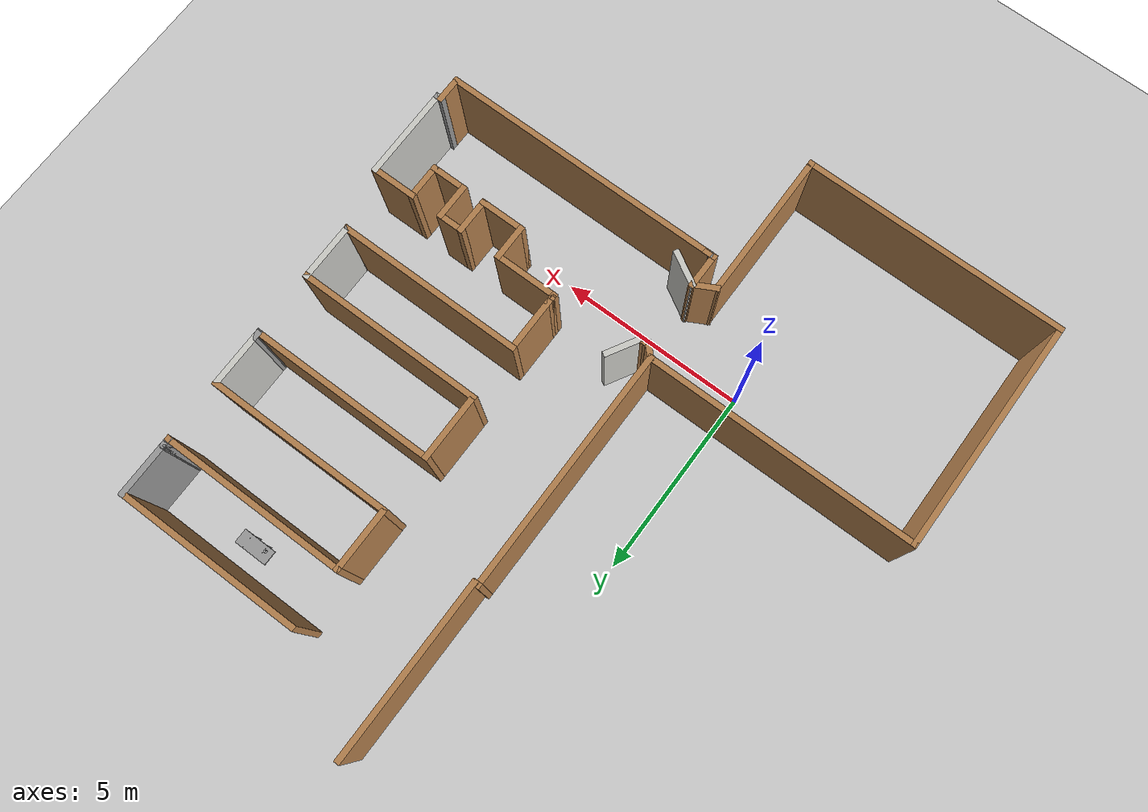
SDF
<sdf version="1.6">
 <world name="default">
  <model name="ground_plane">
   <static>1</static>
   <link name="link">
    <collision name="collision">
     <geometry><plane><normal>0 0 1</normal><size>100 100</size></plane></geometry>
     <surface>
      <contact><collide_bitmask>65535</collide_bitmask></contact>
      <friction><ode><mu>100</mu><mu2>50</mu2></ode></friction>
     </surface>
    </collision>
    <visual name="visual">
     <cast_shadows>0</cast_shadows>
     <geometry><plane><normal>0 0 1</normal><size>100 100</size></plane></geometry>
     <material>
      <script><uri>file://media/materials/scripts/gazebo.material</uri><name>Gazebo/Grey</name></script>
     </material>
    </visual>
   </link>
  </model>
  <model name="ecst_lab_v2">
   <pose>2.38151 7.60499 0 0 -0 -1.57079</pose>
   <link name="Wall_10">
    <collision name="Wall_10_Collision">
     <geometry><box><size>1.5 0.15 2.5</size></box></geometry>
     <pose>0 0 1.25 0 -0 0</pose>
    </collision>
    <visual name="Wall_10_Visual">
     <pose>0 0 1.25 0 -0 0</pose>
     <geometry><box><size>1.5 0.15 2.5</size></box></geometry>
     <material>
      <script><uri>file://media/materials/scripts/gazebo.material</uri><name>Gazebo/Grey</name></script>
      <ambient>1 1 1 1</ambient>
     </material>
     <meta><layer>0</layer></meta>
    </visual>
    <pose>-2.09801 7.10227 0 0 -0 0</pose>
   </link>
   <link name="Wall_11">
    <collision name="Wall_11_Collision">
     <geometry><box><size>0.15 0.15 2.5</size></box></geometry>
     <pose>0 0 1.25 0 -0 0</pose>
    </collision>
    <visual name="Wall_11_Visual">
     <pose>0 0 1.25 0 -0 0</pose>
     <geometry><box><size>0.15 0.15 2.5</size></box></geometry>
     <material>
      <script><uri>file://media/materials/scripts/gazebo.material</uri><name>Gazebo/Grey</name></script>
      <ambient>1 1 1 1</ambient>
     </material>
     <meta><layer>0</layer></meta>
    </visual>
    <pose>-1.42301 7.10227 0 0 -0 0</pose>
   </link>
   <link name="Wall_12">
    <collision name="Wall_12_Collision">
     <geometry><box><size>0.16 0.15 2.5</size></box></geometry>
     <pose>0 0 1.25 0 -0 0</pose>
    </collision>
    <visual name="Wall_12_Visual">
     <pose>0 0 1.25 0 -0 0</pose>
     <geometry><box><size>0.16 0.15 2.5</size></box></geometry>
     <material>
      <script><uri>file://media/materials/scripts/gazebo.material</uri><name>Gazebo/Grey</name></script>
      <ambient>1 1 1 1</ambient>
     </material>
     <meta><layer>0</layer></meta>
    </visual>
    <pose>-1.41801 7.10227 0 0 -0 0</pose>
   </link>
   <link name="Wall_13">
    <collision name="Wall_13_Collision">
     <geometry><box><size>0.16 0.15 2.5</size></box></geometry>
     <pose>0 0 1.25 0 -0 0</pose>
    </collision>
    <visual name="Wall_13_Visual">
     <pose>0 0 1.25 0 -0 0</pose>
     <geometry><box><size>0.16 0.15 2.5</size></box></geometry>
     <material>
      <script><uri>file://media/materials/scripts/gazebo.material</uri><name>Gazebo/Grey</name></script>
      <ambient>1 1 1 1</ambient>
     </material>
     <meta><layer>0</layer></meta>
    </visual>
    <pose>-1.40801 7.10227 0 0 -0 0</pose>
   </link>
   <link name="Wall_14">
    <collision name="Wall_14_Collision">
     <geometry><box><size>0.16 0.15 2.5</size></box></geometry>
     <pose>0 0 1.25 0 -0 0</pose>
    </collision>
    <visual name="Wall_14_Visual">
     <pose>0 0 1.25 0 -0 0</pose>
     <geometry><box><size>0.16 0.15 2.5</size></box></geometry>
     <material>
      <script><uri>file://media/materials/scripts/gazebo.material</uri><name>Gazebo/Grey</name></script>
      <ambient>1 1 1 1</ambient>
     </material>
     <meta><layer>0</layer></meta>
    </visual>
    <pose>-1.39801 7.10227 0 0 -0 0</pose>
   </link>
   <link name="Wall_15">
    <collision name="Wall_15_Collision">
     <geometry><box><size>0.16 0.15 2.5</size></box></geometry>
     <pose>0 0 1.25 0 -0 0</pose>
    </collision>
    <visual name="Wall_15_Visual">
     <pose>0 0 1.25 0 -0 0</pose>
     <geometry><box><size>0.16 0.15 2.5</size></box></geometry>
     <material>
      <script><uri>file://media/materials/scripts/gazebo.material</uri><name>Gazebo/Grey</name></script>
      <ambient>1 1 1 1</ambient>
     </material>
     <meta><layer>0</layer></meta>
    </visual>
    <pose>-1.38801 7.10227 0 0 -0 0</pose>
   </link>
   <link name="Wall_16">
    <collision name="Wall_16_Collision">
     <geometry><box><size>0.16 0.15 2.5</size></box></geometry>
     <pose>0 0 1.25 0 -0 0</pose>
    </collision>
    <visual name="Wall_16_Visual">
     <pose>0 0 1.25 0 -0 0</pose>
     <geometry><box><size>0.16 0.15 2.5</size></box></geometry>
     <material>
      <script><uri>file://media/materials/scripts/gazebo.material</uri><name>Gazebo/Grey</name></script>
      <ambient>1 1 1 1</ambient>
     </material>
     <meta><layer>0</layer></meta>
    </visual>
    <pose>-1.37801 7.10227 0 0 -0 0</pose>
   </link>
   <link name="Wall_17">
    <collision name="Wall_17_Collision">
     <geometry><box><size>0.16 0.15 2.5</size></box></geometry>
     <pose>0 0 1.25 0 -0 0</pose>
    </collision>
    <visual name="Wall_17_Visual">
     <pose>0 0 1.25 0 -0 0</pose>
     <geometry><box><size>0.16 0.15 2.5</size></box></geometry>
     <material>
      <script><uri>file://media/materials/scripts/gazebo.material</uri><name>Gazebo/Grey</name></script>
      <ambient>1 1 1 1</ambient>
     </material>
     <meta><layer>0</layer></meta>
    </visual>
    <pose>-1.36801 7.10227 0 0 -0 0</pose>
   </link>
   <link name="Wall_18">
    <collision name="Wall_18_Collision">
     <geometry><box><size>0.16 0.15 2.5</size></box></geometry>
     <pose>0 0 1.25 0 -0 0</pose>
    </collision>
    <visual name="Wall_18_Visual">
     <pose>0 0 1.25 0 -0 0</pose>
     <geometry><box><size>0.16 0.15 2.5</size></box></geometry>
     <material>
      <script><uri>file://media/materials/scripts/gazebo.material</uri><name>Gazebo/Grey</name></script>
      <ambient>1 1 1 1</ambient>
     </material>
     <meta><layer>0</layer></meta>
    </visual>
    <pose>-1.35801 7.10227 0 0 -0 0</pose>
   </link>
   <link name="Wall_19">
    <collision name="Wall_19_Collision">
     <geometry><box><size>0.16 0.15 2.5</size></box></geometry>
     <pose>0 0 1.25 0 -0 0</pose>
    </collision>
    <visual name="Wall_19_Visual">
     <pose>0 0 1.25 0 -0 0</pose>
     <geometry><box><size>0.16 0.15 2.5</size></box></geometry>
     <material>
      <script><uri>file://media/materials/scripts/gazebo.material</uri><name>Gazebo/Grey</name></script>
      <ambient>1 1 1 1</ambient>
     </material>
     <meta><layer>0</layer></meta>
    </visual>
    <pose>-1.34801 7.10227 0 0 -0 0</pose>
   </link>
   <link name="Wall_20">
    <collision name="Wall_20_Collision">
     <geometry><box><size>0.25 0.15 2.5</size></box></geometry>
     <pose>0 0 1.25 0 -0 0</pose>
    </collision>
    <visual name="Wall_20_Visual">
     <pose>0 0 1.25 0 -0 0</pose>
     <geometry><box><size>0.25 0.15 2.5</size></box></geometry>
     <material>
      <script><uri>file://media/materials/scripts/gazebo.material</uri><name>Gazebo/Grey</name></script>
      <ambient>1 1 1 1</ambient>
     </material>
     <meta><layer>0</layer></meta>
    </visual>
    <pose>-1.29301 7.10227 0 0 -0 0</pose>
   </link>
   <link name="Wall_21">
    <collision name="Wall_21_Collision">
     <geometry><box><size>5 0.15 2.5</size></box></geometry>
     <pose>0 0 1.25 0 -0 0</pose>
    </collision>
    <visual name="Wall_21_Visual">
     <pose>0 0 1.25 0 -0 0</pose>
     <geometry><box><size>5 0.15 2.5</size></box></geometry>
     <material>
      <script><uri>file://media/materials/scripts/gazebo.material</uri><name>Gazebo/Wood</name></script>
      <ambient>1 1 1 1</ambient>
     </material>
     <meta><layer>0</layer></meta>
    </visual>
    <pose>-1.24301 4.67727 0 0 -0 -1.5708</pose>
   </link>
   <link name="Wall_22">
    <collision name="Wall_22_Collision">
     <geometry><box><size>1.75 0.15 2.5</size></box></geometry>
     <pose>0 0 1.25 0 -0 0</pose>
    </collision>
    <visual name="Wall_22_Visual">
     <pose>0 0 1.25 0 -0 0</pose>
     <geometry><box><size>1.75 0.15 2.5</size></box></geometry>
     <material>
      <script><uri>file://media/materials/scripts/gazebo.material</uri><name>Gazebo/Wood</name></script>
      <ambient>1 1 1 1</ambient>
     </material>
     <meta><layer>0</layer></meta>
    </visual>
    <pose>-0.443013 2.25228 0 0 -0 0</pose>
   </link>
   <link name="Wall_23">
    <collision name="Wall_23_Collision">
     <geometry><box><size>5 0.15 2.5</size></box></geometry>
     <pose>0 0 1.25 0 -0 0</pose>
    </collision>
    <visual name="Wall_23_Visual">
     <pose>0 0 1.25 0 -0 0</pose>
     <geometry><box><size>5 0.15 2.5</size></box></geometry>
     <material>
      <script><uri>file://media/materials/scripts/gazebo.material</uri><name>Gazebo/Wood</name></script>
      <ambient>1 1 1 1</ambient>
     </material>
     <meta><layer>0</layer></meta>
    </visual>
    <pose>0.356987 4.67727 0 0 -0 1.5708</pose>
   </link>
   <link name="Wall_24">
    <collision name="Wall_24_Collision">
     <geometry><box><size>1.5 0.15 2.5</size></box></geometry>
     <pose>0 0 1.25 0 -0 0</pose>
    </collision>
    <visual name="Wall_24_Visual">
     <pose>0 0 1.25 0 -0 0</pose>
     <geometry><box><size>1.5 0.15 2.5</size></box></geometry>
     <material>
      <script><uri>file://media/materials/scripts/gazebo.material</uri><name>Gazebo/CeilingTiled</name></script>
      <ambient>1 1 1 1</ambient>
     </material>
     <meta><layer>0</layer></meta>
    </visual>
    <pose>1.03199 7.10227 0 0 -0 0</pose>
   </link>
   <link name="Wall_25">
    <collision name="Wall_25_Collision">
     <geometry><box><size>0.25 0.15 2.5</size></box></geometry>
     <pose>0 0 1.25 0 -0 0</pose>
    </collision>
    <visual name="Wall_25_Visual">
     <pose>0 0 1.25 0 -0 0</pose>
     <geometry><box><size>0.25 0.15 2.5</size></box></geometry>
     <material>
      <script><uri>file://media/materials/scripts/gazebo.material</uri><name>Gazebo/Grey</name></script>
      <ambient>1 1 1 1</ambient>
     </material>
     <meta><layer>0</layer></meta>
    </visual>
    <pose>1.75699 7.10227 0 0 -0 0</pose>
   </link>
   <link name="Wall_26">
    <collision name="Wall_26_Collision">
     <geometry><box><size>0.15 0.15 2.5</size></box></geometry>
     <pose>0 0 1.25 0 -0 0</pose>
    </collision>
    <visual name="Wall_26_Visual">
     <pose>0 0 1.25 0 -0 0</pose>
     <geometry><box><size>0.15 0.15 2.5</size></box></geometry>
     <material>
      <script><uri>file://media/materials/scripts/gazebo.material</uri><name>Gazebo/Grey</name></script>
      <ambient>1 1 1 1</ambient>
     </material>
     <meta><layer>0</layer></meta>
    </visual>
    <pose>1.80699 7.10227 0 0 -0 0</pose>
   </link>
   <link name="Wall_27">
    <collision name="Wall_27_Collision">
     <geometry><box><size>0.16 0.15 2.5</size></box></geometry>
     <pose>0 0 1.25 0 -0 0</pose>
    </collision>
    <visual name="Wall_27_Visual">
     <pose>0 0 1.25 0 -0 0</pose>
     <geometry><box><size>0.16 0.15 2.5</size></box></geometry>
     <material>
      <script><uri>file://media/materials/scripts/gazebo.material</uri><name>Gazebo/Grey</name></script>
      <ambient>1 1 1 1</ambient>
     </material>
     <meta><layer>0</layer></meta>
    </visual>
    <pose>1.81199 7.10227 0 0 -0 0</pose>
   </link>
   <link name="Wall_28">
    <collision name="Wall_28_Collision">
     <geometry><box><size>0.16 0.15 2.5</size></box></geometry>
     <pose>0 0 1.25 0 -0 0</pose>
    </collision>
    <visual name="Wall_28_Visual">
     <pose>0 0 1.25 0 -0 0</pose>
     <geometry><box><size>0.16 0.15 2.5</size></box></geometry>
     <material>
      <script><uri>file://media/materials/scripts/gazebo.material</uri><name>Gazebo/Grey</name></script>
      <ambient>1 1 1 1</ambient>
     </material>
     <meta><layer>0</layer></meta>
    </visual>
    <pose>1.82199 7.10227 0 0 -0 0</pose>
   </link>
   <link name="Wall_29">
    <collision name="Wall_29_Collision">
     <geometry><box><size>0.16 0.15 2.5</size></box></geometry>
     <pose>0 0 1.25 0 -0 0</pose>
    </collision>
    <visual name="Wall_29_Visual">
     <pose>0 0 1.25 0 -0 0</pose>
     <geometry><box><size>0.16 0.15 2.5</size></box></geometry>
     <material>
      <script><uri>file://media/materials/scripts/gazebo.material</uri><name>Gazebo/Grey</name></script>
      <ambient>1 1 1 1</ambient>
     </material>
     <meta><layer>0</layer></meta>
    </visual>
    <pose>1.82199 7.10227 0 0 -0 3.14159</pose>
   </link>
   <link name="Wall_30">
    <collision name="Wall_30_Collision">
     <geometry><box><size>0.16 0.15 2.5</size></box></geometry>
     <pose>0 0 1.25 0 -0 0</pose>
    </collision>
    <visual name="Wall_30_Visual">
     <pose>0 0 1.25 0 -0 0</pose>
     <geometry><box><size>0.16 0.15 2.5</size></box></geometry>
     <material>
      <script><uri>file://media/materials/scripts/gazebo.material</uri><name>Gazebo/Grey</name></script>
      <ambient>1 1 1 1</ambient>
     </material>
     <meta><layer>0</layer></meta>
    </visual>
    <pose>1.82199 7.10227 0 0 -0 0</pose>
   </link>
   <link name="Wall_31">
    <collision name="Wall_31_Collision">
     <geometry><box><size>0.16 0.15 2.5</size></box></geometry>
     <pose>0 0 1.25 0 -0 0</pose>
    </collision>
    <visual name="Wall_31_Visual">
     <pose>0 0 1.25 0 -0 0</pose>
     <geometry><box><size>0.16 0.15 2.5</size></box></geometry>
     <material>
      <script><uri>file://media/materials/scripts/gazebo.material</uri><name>Gazebo/Grey</name></script>
      <ambient>1 1 1 1</ambient>
     </material>
     <meta><layer>0</layer></meta>
    </visual>
    <pose>1.83199 7.10227 0 0 -0 0</pose>
   </link>
   <link name="Wall_32">
    <collision name="Wall_32_Collision">
     <geometry><box><size>0.16 0.15 2.5</size></box></geometry>
     <pose>0 0 1.25 0 -0 0</pose>
    </collision>
    <visual name="Wall_32_Visual">
     <pose>0 0 1.25 0 -0 0</pose>
     <geometry><box><size>0.16 0.15 2.5</size></box></geometry>
     <material>
      <script><uri>file://media/materials/scripts/gazebo.material</uri><name>Gazebo/Grey</name></script>
      <ambient>1 1 1 1</ambient>
     </material>
     <meta><layer>0</layer></meta>
    </visual>
    <pose>1.83199 7.10227 0 0 -0 3.14159</pose>
   </link>
   <link name="Wall_33">
    <collision name="Wall_33_Collision">
     <geometry><box><size>0.16 0.15 2.5</size></box></geometry>
     <pose>0 0 1.25 0 -0 0</pose>
    </collision>
    <visual name="Wall_33_Visual">
     <pose>0 0 1.25 0 -0 0</pose>
     <geometry><box><size>0.16 0.15 2.5</size></box></geometry>
     <material>
      <script><uri>file://media/materials/scripts/gazebo.material</uri><name>Gazebo/Grey</name></script>
      <ambient>1 1 1 1</ambient>
     </material>
     <meta><layer>0</layer></meta>
    </visual>
    <pose>1.83199 7.10227 0 0 -0 0</pose>
   </link>
   <link name="Wall_34">
    <collision name="Wall_34_Collision">
     <geometry><box><size>5 0.15 2.5</size></box></geometry>
     <pose>0 0 1.25 0 -0 0</pose>
    </collision>
    <visual name="Wall_34_Visual">
     <pose>0 0 1.25 0 -0 0</pose>
     <geometry><box><size>5 0.15 2.5</size></box></geometry>
     <material>
      <script><uri>file://media/materials/scripts/gazebo.material</uri><name>Gazebo/Wood</name></script>
      <ambient>1 1 1 1</ambient>
     </material>
     <meta><layer>0</layer></meta>
    </visual>
    <pose>1.83699 4.67727 0 0 -0 -1.5708</pose>
   </link>
   <link name="Wall_35">
    <collision name="Wall_35_Collision">
     <geometry><box><size>1.75 0.15 2.5</size></box></geometry>
     <pose>0 0 1.25 0 -0 0</pose>
    </collision>
    <visual name="Wall_35_Visual">
     <pose>0 0 1.25 0 -0 0</pose>
     <geometry><box><size>1.75 0.15 2.5</size></box></geometry>
     <material>
      <script><uri>file://media/materials/scripts/gazebo.material</uri><name>Gazebo/Wood</name></script>
      <ambient>1 1 1 1</ambient>
     </material>
     <meta><layer>0</layer></meta>
    </visual>
    <pose>2.63699 2.25228 0 0 -0 0</pose>
   </link>
   <link name="Wall_36">
    <collision name="Wall_36_Collision">
     <geometry><box><size>0.25 0.15 2.5</size></box></geometry>
     <pose>0 0 1.25 0 -0 0</pose>
    </collision>
    <visual name="Wall_36_Visual">
     <pose>0 0 1.25 0 -0 0</pose>
     <geometry><box><size>0.25 0.15 2.5</size></box></geometry>
     <material>
      <script><uri>file://media/materials/scripts/gazebo.material</uri><name>Gazebo/Wood</name></script>
      <ambient>1 1 1 1</ambient>
     </material>
     <meta><layer>0</layer></meta>
    </visual>
    <pose>3.48699 2.25228 0 0 -0 0</pose>
   </link>
   <link name="Wall_37">
    <collision name="Wall_37_Collision">
     <geometry><box><size>5 0.15 2.5</size></box></geometry>
     <pose>0 0 1.25 0 -0 0</pose>
    </collision>
    <visual name="Wall_37_Visual">
     <pose>0 0 1.25 0 -0 0</pose>
     <geometry><box><size>5 0.15 2.5</size></box></geometry>
     <material>
      <script><uri>file://media/materials/scripts/gazebo.material</uri><name>Gazebo/Wood</name></script>
      <ambient>1 1 1 1</ambient>
     </material>
     <meta><layer>0</layer></meta>
    </visual>
    <pose>3.53699 4.67727 0 0 -0 1.5708</pose>
   </link>
   <link name="Wall_38">
    <collision name="Wall_38_Collision">
     <geometry><box><size>1.5 0.15 2.5</size></box></geometry>
     <pose>0 0 1.25 0 -0 0</pose>
    </collision>
    <visual name="Wall_38_Visual">
     <pose>0 0 1.25 0 -0 0</pose>
     <geometry><box><size>1.5 0.15 2.5</size></box></geometry>
     <material>
      <script><uri>file://media/materials/scripts/gazebo.material</uri><name>Gazebo/CeilingTiled</name></script>
      <ambient>1 1 1 1</ambient>
     </material>
     <meta><layer>0</layer></meta>
    </visual>
    <pose>4.21199 7.10227 0 0 -0 0</pose>
   </link>
   <link name="Wall_39">
    <collision name="Wall_39_Collision">
     <geometry><box><size>0.25 0.15 2.5</size></box></geometry>
     <pose>0 0 1.25 0 -0 0</pose>
    </collision>
    <visual name="Wall_39_Visual">
     <pose>0 0 1.25 0 -0 0</pose>
     <geometry><box><size>0.25 0.15 2.5</size></box></geometry>
     <material>
      <script><uri>file://media/materials/scripts/gazebo.material</uri><name>Gazebo/Grey</name></script>
      <ambient>1 1 1 1</ambient>
     </material>
     <meta><layer>0</layer></meta>
    </visual>
    <pose>4.93699 7.10227 0 0 -0 0</pose>
   </link>
   <link name="Wall_40">
    <collision name="Wall_40_Collision">
     <geometry><box><size>5 0.15 2.5</size></box></geometry>
     <pose>0 0 1.25 0 -0 0</pose>
    </collision>
    <visual name="Wall_40_Visual">
     <pose>0 0 1.25 0 -0 0</pose>
     <geometry><box><size>5 0.15 2.5</size></box></geometry>
     <material>
      <script><uri>file://media/materials/scripts/gazebo.material</uri><name>Gazebo/Wood</name></script>
      <ambient>1 1 1 1</ambient>
     </material>
     <meta><layer>0</layer></meta>
    </visual>
    <pose>4.98699 4.67727 0 0 -0 -1.5708</pose>
   </link>
   <link name="Wall_41">
    <collision name="Wall_41_Collision">
     <geometry><box><size>1.5 0.15 2.5</size></box></geometry>
     <pose>0 0 1.25 0 -0 0</pose>
    </collision>
    <visual name="Wall_41_Visual">
     <pose>0 0 1.25 0 -0 0</pose>
     <geometry><box><size>1.5 0.15 2.5</size></box></geometry>
     <material>
      <script><uri>file://media/materials/scripts/gazebo.material</uri><name>Gazebo/Wood</name></script>
      <ambient>1 1 1 1</ambient>
     </material>
     <meta><layer>0</layer></meta>
    </visual>
    <pose>5.66199 2.25228 0 0 -0 0</pose>
   </link>
   <link name="Wall_42">
    <collision name="Wall_42_Collision">
     <geometry><box><size>0.25 0.15 2.5</size></box></geometry>
     <pose>0 0 1.25 0 -0 0</pose>
    </collision>
    <visual name="Wall_42_Visual">
     <pose>0 0 1.25 0 -0 0</pose>
     <geometry><box><size>0.25 0.15 2.5</size></box></geometry>
     <material>
      <script><uri>file://media/materials/scripts/gazebo.material</uri><name>Gazebo/Wood</name></script>
      <ambient>1 1 1 1</ambient>
     </material>
     <meta><layer>0</layer></meta>
    </visual>
    <pose>6.38699 2.25228 0 0 -0 0</pose>
   </link>
   <link name="Wall_43">
    <collision name="Wall_43_Collision">
     <geometry><box><size>0.25 0.15 2.5</size></box></geometry>
     <pose>0 0 1.25 0 -0 0</pose>
    </collision>
    <visual name="Wall_43_Visual">
     <pose>0 0 1.25 0 -0 0</pose>
     <geometry><box><size>0.25 0.15 2.5</size></box></geometry>
     <material>
      <script><uri>file://media/materials/scripts/gazebo.material</uri><name>Gazebo/Wood</name></script>
      <ambient>1 1 1 1</ambient>
     </material>
     <meta><layer>0</layer></meta>
    </visual>
    <pose>6.48699 2.25228 0 0 -0 0</pose>
   </link>
   <link name="Wall_44">
    <collision name="Wall_44_Collision">
     <geometry><box><size>1.75 0.15 2.5</size></box></geometry>
     <pose>0 0 1.25 0 -0 0</pose>
    </collision>
    <visual name="Wall_44_Visual">
     <pose>0 0 1.25 0 -0 0</pose>
     <geometry><box><size>1.75 0.15 2.5</size></box></geometry>
     <material>
      <script><uri>file://media/materials/scripts/gazebo.material</uri><name>Gazebo/Wood</name></script>
      <ambient>1 1 1 1</ambient>
     </material>
     <meta><layer>0</layer></meta>
    </visual>
    <pose>6.53699 3.05227 0 0 -0 1.5708</pose>
   </link>
   <link name="Wall_45">
    <collision name="Wall_45_Collision">
     <geometry><box><size>1 0.15 2.5</size></box></geometry>
     <pose>0 0 1.25 0 -0 0</pose>
    </collision>
    <visual name="Wall_45_Visual">
     <pose>0 0 1.25 0 -0 0</pose>
     <geometry><box><size>1 0.15 2.5</size></box></geometry>
     <material>
      <script><uri>file://media/materials/scripts/gazebo.material</uri><name>Gazebo/Wood</name></script>
      <ambient>1 1 1 1</ambient>
     </material>
     <meta><layer>0</layer></meta>
    </visual>
    <pose>6.96199 3.85228 0 0 -0 0</pose>
   </link>
   <link name="Wall_46">
    <collision name="Wall_46_Collision">
     <geometry><box><size>1.25 0.15 2.5</size></box></geometry>
     <pose>0 0 1.25 0 -0 0</pose>
    </collision>
    <visual name="Wall_46_Visual">
     <pose>0 0 1.25 0 -0 0</pose>
     <geometry><box><size>1.25 0.15 2.5</size></box></geometry>
     <material>
      <script><uri>file://media/materials/scripts/gazebo.material</uri><name>Gazebo/Wood</name></script>
      <ambient>1 1 1 1</ambient>
     </material>
     <meta><layer>0</layer></meta>
    </visual>
    <pose>7.38699 4.40228 0 0 -0 1.5708</pose>
   </link>
   <link name="Wall_47">
    <collision name="Wall_47_Collision">
     <geometry><box><size>1 0.15 2.5</size></box></geometry>
     <pose>0 0 1.25 0 -0 0</pose>
    </collision>
    <visual name="Wall_47_Visual">
     <pose>0 0 1.25 0 -0 0</pose>
     <geometry><box><size>1 0.15 2.5</size></box></geometry>
     <material>
      <script><uri>file://media/materials/scripts/gazebo.material</uri><name>Gazebo/Wood</name></script>
      <ambient>1 1 1 1</ambient>
     </material>
     <meta><layer>0</layer></meta>
    </visual>
    <pose>6.96199 4.95228 0 0 -0 3.14159</pose>
   </link>
   <link name="Wall_48">
    <collision name="Wall_48_Collision">
     <geometry><box><size>0.75 0.15 2.5</size></box></geometry>
     <pose>0 0 1.25 0 -0 0</pose>
    </collision>
    <visual name="Wall_48_Visual">
     <pose>0 0 1.25 0 -0 0</pose>
     <geometry><box><size>0.75 0.15 2.5</size></box></geometry>
     <material>
      <script><uri>file://media/materials/scripts/gazebo.material</uri><name>Gazebo/Wood</name></script>
      <ambient>1 1 1 1</ambient>
     </material>
     <meta><layer>0</layer></meta>
    </visual>
    <pose>6.53699 5.25228 0 0 -0 1.5708</pose>
   </link>
   <link name="Wall_49">
    <collision name="Wall_49_Collision">
     <geometry><box><size>1 0.15 2.5</size></box></geometry>
     <pose>0 0 1.25 0 -0 0</pose>
    </collision>
    <visual name="Wall_49_Visual">
     <pose>0 0 1.25 0 -0 0</pose>
     <geometry><box><size>1 0.15 2.5</size></box></geometry>
     <material>
      <script><uri>file://media/materials/scripts/gazebo.material</uri><name>Gazebo/Wood</name></script>
      <ambient>1 1 1 1</ambient>
     </material>
     <meta><layer>0</layer></meta>
    </visual>
    <pose>6.96199 5.55227 0 0 -0 0</pose>
   </link>
   <link name="Wall_50">
    <collision name="Wall_50_Collision">
     <geometry><box><size>1 0.15 2.5</size></box></geometry>
     <pose>0 0 1.25 0 -0 0</pose>
    </collision>
    <visual name="Wall_50_Visual">
     <pose>0 0 1.25 0 -0 0</pose>
     <geometry><box><size>1 0.15 2.5</size></box></geometry>
     <material>
      <script><uri>file://media/materials/scripts/gazebo.material</uri><name>Gazebo/Wood</name></script>
      <ambient>1 1 1 1</ambient>
     </material>
     <meta><layer>0</layer></meta>
    </visual>
    <pose>7.38699 5.97727 0 0 -0 1.5708</pose>
   </link>
   <link name="Wall_51">
    <collision name="Wall_51_Collision">
     <geometry><box><size>1 0.15 2.5</size></box></geometry>
     <pose>0 0 1.25 0 -0 0</pose>
    </collision>
    <visual name="Wall_51_Visual">
     <pose>0 0 1.25 0 -0 0</pose>
     <geometry><box><size>1 0.15 2.5</size></box></geometry>
     <material>
      <script><uri>file://media/materials/scripts/gazebo.material</uri><name>Gazebo/Wood</name></script>
      <ambient>1 1 1 1</ambient>
     </material>
     <meta><layer>0</layer></meta>
    </visual>
    <pose>6.96199 6.40228 0 0 -0 3.14159</pose>
   </link>
   <link name="Wall_52">
    <collision name="Wall_52_Collision">
     <geometry><box><size>1.25 0.15 2.5</size></box></geometry>
     <pose>0 0 1.25 0 -0 0</pose>
    </collision>
    <visual name="Wall_52_Visual">
     <pose>0 0 1.25 0 -0 0</pose>
     <geometry><box><size>1.25 0.15 2.5</size></box></geometry>
     <material>
      <script><uri>file://media/materials/scripts/gazebo.material</uri><name>Gazebo/Wood</name></script>
      <ambient>1 1 1 1</ambient>
     </material>
     <meta><layer>0</layer></meta>
    </visual>
    <pose>6.53699 6.95228 0 0 -0 1.5708</pose>
   </link>
   <link name="Wall_53">
    <collision name="Wall_53_Collision">
     <geometry><box><size>2.5 0.15 2.5</size></box></geometry>
     <pose>0 0 1.25 0 -0 0</pose>
    </collision>
    <visual name="Wall_53_Visual">
     <pose>0 0 1.25 0 -0 0</pose>
     <geometry><box><size>2.5 0.15 2.5</size></box></geometry>
     <material>
      <script><uri>file://media/materials/scripts/gazebo.material</uri><name>Gazebo/CeilingTiled</name></script>
      <ambient>1 1 1 1</ambient>
     </material>
     <meta><layer>0</layer></meta>
    </visual>
    <pose>7.71199 7.50228 0 0 -0 0</pose>
   </link>
   <link name="Wall_54">
    <collision name="Wall_54_Collision">
     <geometry><box><size>0.25 0.15 2.5</size></box></geometry>
     <pose>0 0 1.25 0 -0 0</pose>
    </collision>
    <visual name="Wall_54_Visual">
     <pose>0 0 1.25 0 -0 0</pose>
     <geometry><box><size>0.25 0.15 2.5</size></box></geometry>
     <material>
      <script><uri>file://media/materials/scripts/gazebo.material</uri><name>Gazebo/Grey</name></script>
      <ambient>1 1 1 1</ambient>
     </material>
     <meta><layer>0</layer></meta>
    </visual>
    <pose>8.88699 7.45228 0 0 -0 -1.5708</pose>
   </link>
   <link name="Wall_55">
    <collision name="Wall_55_Collision">
     <geometry><box><size>0.75 0.15 2.5</size></box></geometry>
     <pose>0 0 1.25 0 -0 0</pose>
    </collision>
    <visual name="Wall_55_Visual">
     <pose>0 0 1.25 0 -0 0</pose>
     <geometry><box><size>0.75 0.15 2.5</size></box></geometry>
     <material>
      <script><uri>file://media/materials/scripts/gazebo.material</uri><name>Gazebo/Wood</name></script>
      <ambient>1 1 1 1</ambient>
     </material>
     <meta><layer>0</layer></meta>
    </visual>
    <pose>9.18699 7.40228 0 0 -0 0</pose>
   </link>
   <link name="Wall_56">
    <collision name="Wall_56_Collision">
     <geometry><box><size>7.5 0.15 2.5</size></box></geometry>
     <pose>0 0 1.25 0 -0 0</pose>
    </collision>
    <visual name="Wall_56_Visual">
     <pose>0 0 1.25 0 -0 0</pose>
     <geometry><box><size>7.5 0.15 2.5</size></box></geometry>
     <material>
      <script><uri>file://media/materials/scripts/gazebo.material</uri><name>Gazebo/Wood</name></script>
      <ambient>1 1 1 1</ambient>
     </material>
     <meta><layer>0</layer></meta>
    </visual>
    <pose>9.48699 3.72728 0 0 -0 -1.5708</pose>
   </link>
   <link name="Wall_57">
    <collision name="Wall_57_Collision">
     <geometry><box><size>0.25 0.15 2.5</size></box></geometry>
     <pose>0 0 1.25 0 -0 0</pose>
    </collision>
    <visual name="Wall_57_Visual">
     <pose>0 0 1.25 0 -0 0</pose>
     <geometry><box><size>0.25 0.15 2.5</size></box></geometry>
     <material>
      <script><uri>file://media/materials/scripts/gazebo.material</uri><name>Gazebo/Wood</name></script>
      <ambient>1 1 1 1</ambient>
     </material>
     <meta><layer>0</layer></meta>
    </visual>
    <pose>9.48699 0.002275 0 0 -0 -1.5708</pose>
   </link>
   <link name="Wall_58">
    <collision name="Wall_58_Collision">
     <geometry><box><size>0.15 0.15 2.5</size></box></geometry>
     <pose>0 0 1.25 0 -0 0</pose>
    </collision>
    <visual name="Wall_58_Visual">
     <pose>0 0 1.25 0 -0 0</pose>
     <geometry><box><size>0.15 0.15 2.5</size></box></geometry>
     <material>
      <script><uri>file://media/materials/scripts/gazebo.material</uri><name>Gazebo/Grey</name></script>
      <ambient>1 1 1 1</ambient>
     </material>
     <meta><layer>0</layer></meta>
    </visual>
    <pose>9.48699 -0.047725 0 0 -0 0</pose>
   </link>
   <link name="Wall_59">
    <collision name="Wall_59_Collision">
     <geometry><box><size>0.25 0.15 2.5</size></box></geometry>
     <pose>0 0 1.25 0 -0 0</pose>
    </collision>
    <visual name="Wall_59_Visual">
     <pose>0 0 1.25 0 -0 0</pose>
     <geometry><box><size>0.25 0.15 2.5</size></box></geometry>
     <material>
      <script><uri>file://media/materials/scripts/gazebo.material</uri><name>Gazebo/Wood</name></script>
      <ambient>1 1 1 1</ambient>
     </material>
     <meta><layer>0</layer></meta>
    </visual>
    <pose>9.48699 -0.097725 0 0 -0 -1.5708</pose>
   </link>
   <link name="Wall_60">
    <collision name="Wall_60_Collision">
     <geometry><box><size>1 0.15 2.5</size></box></geometry>
     <pose>0 0 1.25 0 -0 0</pose>
    </collision>
    <visual name="Wall_60_Visual">
     <pose>0 0 1.25 0 -0 0</pose>
     <geometry><box><size>1 0.15 2.5</size></box></geometry>
     <material>
      <script><uri>file://media/materials/scripts/gazebo.material</uri><name>Gazebo/Wood</name></script>
      <ambient>1 1 1 1</ambient>
     </material>
     <meta><layer>0</layer></meta>
    </visual>
    <pose>9.06199 -0.147725 0 0 -0 3.14159</pose>
   </link>
   <link name="Wall_61">
    <collision name="Wall_61_Collision">
     <geometry><box><size>1 0.15 2.5</size></box></geometry>
     <pose>0 0 1.25 0 -0 0</pose>
    </collision>
    <visual name="Wall_61_Visual">
     <pose>0 0 1.25 0 -0 0</pose>
     <geometry><box><size>1 0.15 2.5</size></box></geometry>
     <material>
      <script><uri>file://media/materials/scripts/gazebo.material</uri><name>Gazebo/CeilingTiled</name></script>
      <ambient>1 1 1 1</ambient>
     </material>
     <meta><layer>0</layer></meta>
    </visual>
    <pose>8.84949 0.220335 0 0 -0 1.0472</pose>
   </link>
   <link name="Wall_63">
    <collision name="Wall_63_Collision">
     <geometry><box><size>1 0.15 2.5</size></box></geometry>
     <pose>0 0 1.25 0 -0 0</pose>
    </collision>
    <visual name="Wall_63_Visual">
     <pose>0 0 1.25 0 -0 0</pose>
     <geometry><box><size>1 0.15 2.5</size></box></geometry>
     <material>
      <script><uri>file://media/materials/scripts/gazebo.material</uri><name>Gazebo/CeilingTiled</name></script>
      <ambient>1 1 1 1</ambient>
     </material>
     <meta><layer>0</layer></meta>
    </visual>
    <pose>6.50697 0.254306 0 0 -0 -0.523599</pose>
   </link>
   <link name="Wall_64">
    <collision name="Wall_64_Collision">
     <geometry><box><size>0.25 0.15 2.5</size></box></geometry>
     <pose>0 0 1.25 0 -0 0</pose>
    </collision>
    <visual name="Wall_64_Visual">
     <pose>0 0 1.25 0 -0 0</pose>
     <geometry><box><size>0.25 0.15 2.5</size></box></geometry>
     <material>
      <script><uri>file://media/materials/scripts/gazebo.material</uri><name>Gazebo/Wood</name></script>
      <ambient>1 1 1 1</ambient>
     </material>
     <meta><layer>0</layer></meta>
    </visual>
    <pose>6.87503 -0.008194 0 0 -0 -1.5708</pose>
   </link>
   <link name="Wall_65">
    <collision name="Wall_65_Collision">
     <geometry><box><size>0.25 0.15 2.5</size></box></geometry>
     <pose>0 0 1.25 0 -0 0</pose>
    </collision>
    <visual name="Wall_65_Visual">
     <pose>0 0 1.25 0 -0 0</pose>
     <geometry><box><size>0.25 0.15 2.5</size></box></geometry>
     <material>
      <script><uri>file://media/materials/scripts/gazebo.material</uri><name>Gazebo/Wood</name></script>
      <ambient>1 1 1 1</ambient>
     </material>
     <meta><layer>0</layer></meta>
    </visual>
    <pose>6.88797 -0.106491 0 0 -0 -1.309</pose>
   </link>
   <link name="Wall_66">
    <collision name="Wall_66_Collision">
     <geometry><box><size>0.5 0.15 2.5</size></box></geometry>
     <pose>0 0 1.25 0 -0 0</pose>
    </collision>
    <visual name="Wall_66_Visual">
     <pose>0 0 1.25 0 -0 0</pose>
     <geometry><box><size>0.5 0.15 2.5</size></box></geometry>
     <material>
      <script><uri>file://media/materials/scripts/gazebo.material</uri><name>Gazebo/Wood</name></script>
      <ambient>1 1 1 1</ambient>
     </material>
     <meta><layer>0</layer></meta>
    </visual>
    <pose>6.77717 -0.278531 0 0 -0 -2.35619</pose>
   </link>
   <link name="Wall_67">
    <collision name="Wall_67_Collision">
     <geometry><box><size>7.25 0.15 2.5</size></box></geometry>
     <pose>0 0 1.25 0 -0 0</pose>
    </collision>
    <visual name="Wall_67_Visual">
     <pose>0 0 1.25 0 -0 0</pose>
     <geometry><box><size>7.25 0.15 2.5</size></box></geometry>
     <material>
      <script><uri>file://media/materials/scripts/gazebo.material</uri><name>Gazebo/Wood</name></script>
      <ambient>1 1 1 1</ambient>
     </material>
     <meta><layer>0</layer></meta>
    </visual>
    <pose>6.65343 -3.95227 0 0 -0 -1.5708</pose>
   </link>
   <link name="Wall_68">
    <collision name="Wall_68_Collision">
     <geometry><box><size>6.25 0.15 2.5</size></box></geometry>
     <pose>0 0 1.25 0 -0 0</pose>
    </collision>
    <visual name="Wall_68_Visual">
     <pose>0 0 1.25 0 -0 0</pose>
     <geometry><box><size>6.25 0.15 2.5</size></box></geometry>
     <material>
      <script><uri>file://media/materials/scripts/gazebo.material</uri><name>Gazebo/Wood</name></script>
      <ambient>1 1 1 1</ambient>
     </material>
     <meta><layer>0</layer></meta>
    </visual>
    <pose>9.70343 -7.50227 0 0 -0 0</pose>
   </link>
   <link name="Wall_69">
    <collision name="Wall_69_Collision">
     <geometry><box><size>7 0.15 2.5</size></box></geometry>
     <pose>0 0 1.25 0 -0 0</pose>
    </collision>
    <visual name="Wall_69_Visual">
     <pose>0 0 1.25 0 -0 0</pose>
     <geometry><box><size>7 0.15 2.5</size></box></geometry>
     <material>
      <script><uri>file://media/materials/scripts/gazebo.material</uri><name>Gazebo/Wood</name></script>
      <ambient>1 1 1 1</ambient>
     </material>
     <meta><layer>0</layer></meta>
    </visual>
    <pose>12.7534 -4.07727 0 0 -0 1.5708</pose>
   </link>
   <link name="Wall_70">
    <collision name="Wall_70_Collision">
     <geometry><box><size>4 0.15 2.5</size></box></geometry>
     <pose>0 0 1.25 0 -0 0</pose>
    </collision>
    <visual name="Wall_70_Visual">
     <pose>0 0 1.25 0 -0 0</pose>
     <geometry><box><size>4 0.15 2.5</size></box></geometry>
     <material>
      <script><uri>file://media/materials/scripts/gazebo.material</uri><name>Gazebo/Wood</name></script>
      <ambient>1 1 1 1</ambient>
     </material>
     <meta><layer>0</layer></meta>
    </visual>
    <pose>10.8284 -0.652274 0 0 -0 3.14159</pose>
   </link>
   <link name="Wall_71">
    <collision name="Wall_71_Collision">
     <geometry><box><size>0.720579 0.15 2.5</size></box></geometry>
     <pose>0 0 1.25 0 -0 0</pose>
    </collision>
    <visual name="Wall_71_Visual">
     <pose>0 0 1.25 0 -0 0</pose>
     <geometry><box><size>0.720579 0.15 2.5</size></box></geometry>
     <material>
      <script><uri>file://media/materials/scripts/gazebo.material</uri><name>Gazebo/Wood</name></script>
      <ambient>1 1 1 1</ambient>
     </material>
     <meta><layer>0</layer></meta>
    </visual>
    <pose>8.77021 -0.4 0 0 -0 2.05665</pose>
   </link>
   <link name="Wall_73">
    <collision name="Wall_73_Collision">
     <geometry><box><size>6.5 0.15 2.5</size></box></geometry>
     <pose>0 0 1.25 0 -0 0</pose>
    </collision>
    <visual name="Wall_73_Visual">
     <pose>0 0 1.25 0 -0 0</pose>
     <geometry><box><size>6.5 0.15 2.5</size></box></geometry>
     <material>
      <script><uri>file://media/materials/scripts/gazebo.material</uri><name>Gazebo/Wood</name></script>
      <ambient>1 1 1 1</ambient>
     </material>
     <meta><layer>0</layer></meta>
    </visual>
    <pose>3.47843 -0.402274 0 0 -0 3.14159</pose>
   </link>
   <link name="Wall_74">
    <collision name="Wall_74_Collision">
     <geometry><box><size>0.25 0.15 2.5</size></box></geometry>
     <pose>0 0 1.25 0 -0 0</pose>
    </collision>
    <visual name="Wall_74_Visual">
     <pose>0 0 1.25 0 -0 0</pose>
     <geometry><box><size>0.25 0.15 2.5</size></box></geometry>
     <material>
      <script><uri>file://media/materials/scripts/gazebo.material</uri><name>Gazebo/Wood</name></script>
      <ambient>1 1 1 1</ambient>
     </material>
     <meta><layer>0</layer></meta>
    </visual>
    <pose>0.303428 -0.352274 0 0 -0 1.5708</pose>
   </link>
   <link name="Wall_75">
    <collision name="Wall_75_Collision">
     <geometry><box><size>4.75 0.15 2.5</size></box></geometry>
     <pose>0 0 1.25 0 -0 0</pose>
    </collision>
    <visual name="Wall_75_Visual">
     <pose>0 0 1.25 0 -0 0</pose>
     <geometry><box><size>4.75 0.15 2.5</size></box></geometry>
     <material>
      <script><uri>file://media/materials/scripts/gazebo.material</uri><name>Gazebo/Wood</name></script>
      <ambient>1 1 1 1</ambient>
     </material>
     <meta><layer>0</layer></meta>
    </visual>
    <pose>-1.99657 -0.302274 0 0 -0 3.14159</pose>
   </link>
   <link name="Wall_9">
    <collision name="Wall_9_Collision">
     <geometry><box><size>5 0.15 2.5</size></box></geometry>
     <pose>0 0 1.25 0 -0 0</pose>
    </collision>
    <visual name="Wall_9_Visual">
     <pose>0 0 1.25 0 -0 0</pose>
     <geometry><box><size>5 0.15 2.5</size></box></geometry>
     <material>
      <script><uri>file://media/materials/scripts/gazebo.material</uri><name>Gazebo/Wood</name></script>
      <ambient>1 1 1 1</ambient>
     </material>
     <meta><layer>0</layer></meta>
    </visual>
    <pose>-2.77301 4.67727 0 0 -0 1.5708</pose>
   </link>
   <static>1</static>
  </model>
  <model name="ecst_table_v5">
   <link name="link_1">
    <inertial>
     <mass>5</mass>
     <inertia>
      <ixx>0.188383</ixx>
      <ixy>0</ixy>
      <ixz>0</ixz>
      <iyy>0.470263</iyy>
      <iyz>0</iyz>
      <izz>0.402848</izz>
     </inertia>
    </inertial>
    <visual name="visual">
     <geometry>
      <mesh><uri>/home/jason/Downloads/CALI_TABLE_MODEL_METERS_2_updated.stl</uri><scale>1 1 1</scale></mesh>
     </geometry>
     <material>
      <lighting>1</lighting>
      <script><uri>file://media/materials/scripts/gazebo.material</uri><name>Gazebo/Grey</name></script>
      <emissive>0 0 0 1</emissive>
      <shader type="vertex"><normal_map>__default__</normal_map></shader>
      <ambient>0.3 0.3 0.3 1</ambient>
      <diffuse>0.7 0.7 0.7 1</diffuse>
      <specular>0.01 0.01 0.01 1</specular>
     </material>
    </visual>
    <collision name="collision">
     <geometry><box><size>0.906426 0.381 0.554037</size></box></geometry>
     <surface>
      <friction>
       <ode><mu>1</mu><mu2>1</mu2><fdir1>0 0 0</fdir1><slip1>0</slip1><slip2>0</slip2></ode>
       <torsional>
        <coefficient>1</coefficient>
        <patch_radius>0</patch_radius>
        <surface_radius>0</surface_radius>
        <use_patch_radius>1</use_patch_radius>
        <ode><slip>0</slip></ode>
       </torsional>
      </friction>
      <bounce><restitution_coefficient>0</restitution_coefficient><threshold>1e+06</threshold></bounce>
      <contact>
       <collide_without_contact>0</collide_without_contact>
       <collide_without_contact_bitmask>1</collide_without_contact_bitmask>
       <collide_bitmask>1</collide_bitmask>
       <ode>
        <soft_cfm>0</soft_cfm>
        <soft_erp>0.2</soft_erp>
        <kp>1e+13</kp>
        <kd>1</kd>
        <max_vel>0.01</max_vel>
        <min_depth>0</min_depth>
       </ode>
       <bullet>
        <split_impulse>1</split_impulse>
        <split_impulse_penetration_threshold>-0.01</split_impulse_penetration_threshold>
        <soft_cfm>0</soft_cfm>
        <soft_erp>0.2</soft_erp>
        <kp>1e+13</kp>
        <kd>1</kd>
       </bullet>
      </contact>
     </surface>
    </collision>
   </link>
   <static>0</static>
   <pose>6.97412 9.67586 0.277003 1e-06 -1.4e-05 -0.001658</pose>
  </model>
  <model name="coke_can">
   <link name="link">
    <inertial>
     <pose>0 0 0.06 0 -0 0</pose>
     <mass>0.39</mass>
     <inertia>
      <ixx>0.00055575</ixx>
      <ixy>0</ixy>
      <ixz>0</ixz>
      <iyy>0.00055575</iyy>
      <iyz>0</iyz>
      <izz>0.0001755</izz>
     </inertia>
    </inertial>
    <collision name="collision">
     <pose>0.003937 0.004724 -0.18 0 -0 0</pose>
     <geometry><mesh><uri>model://coke_can/meshes/coke_can.dae</uri></mesh></geometry>
     <surface>
      <friction><ode><mu>1</mu><mu2>1</mu2></ode></friction>
      <contact><ode><kp>1e+07</kp><kd>1</kd><min_depth>0.001</min_depth><max_vel>0.1</max_vel></ode></contact>
     </surface>
    </collision>
    <visual name="visual">
     <pose>0.003937 0.004724 -0.18 0 -0 0</pose>
     <geometry><mesh><uri>model://coke_can/meshes/coke_can.dae</uri></mesh></geometry>
    </visual>
   </link>
   <pose>6.69773 9.60882 0.551451 -0.011308 0.003999 -0.193506</pose>
  </model>
 </world>
</sdf>
